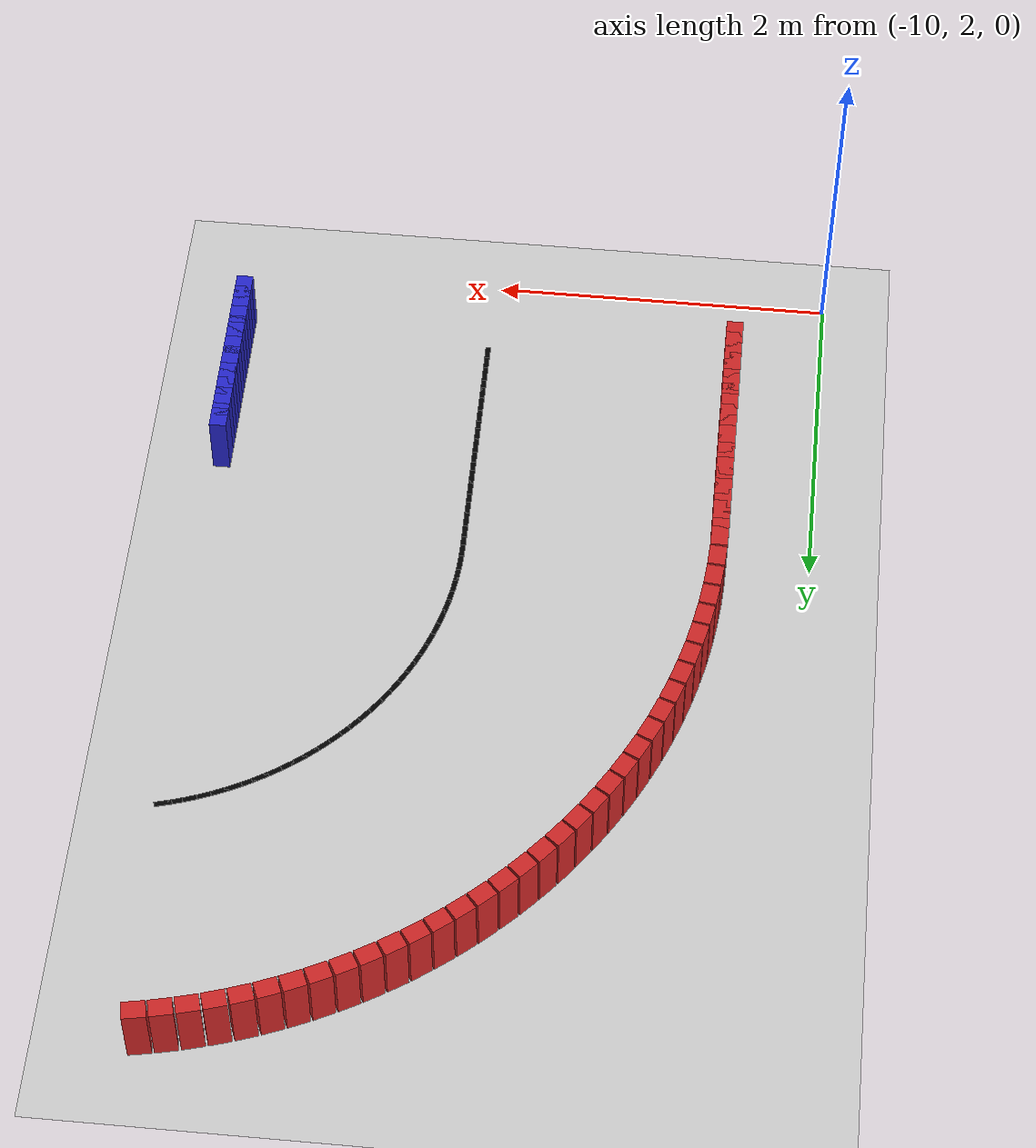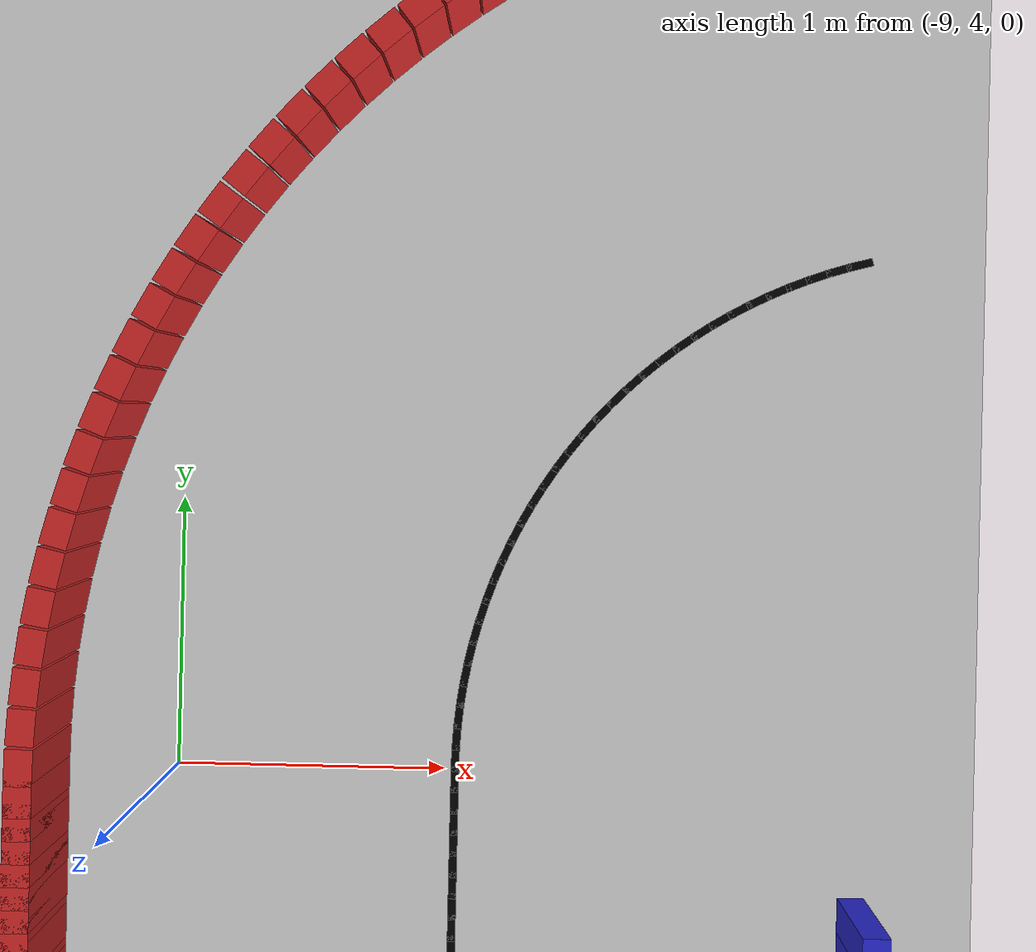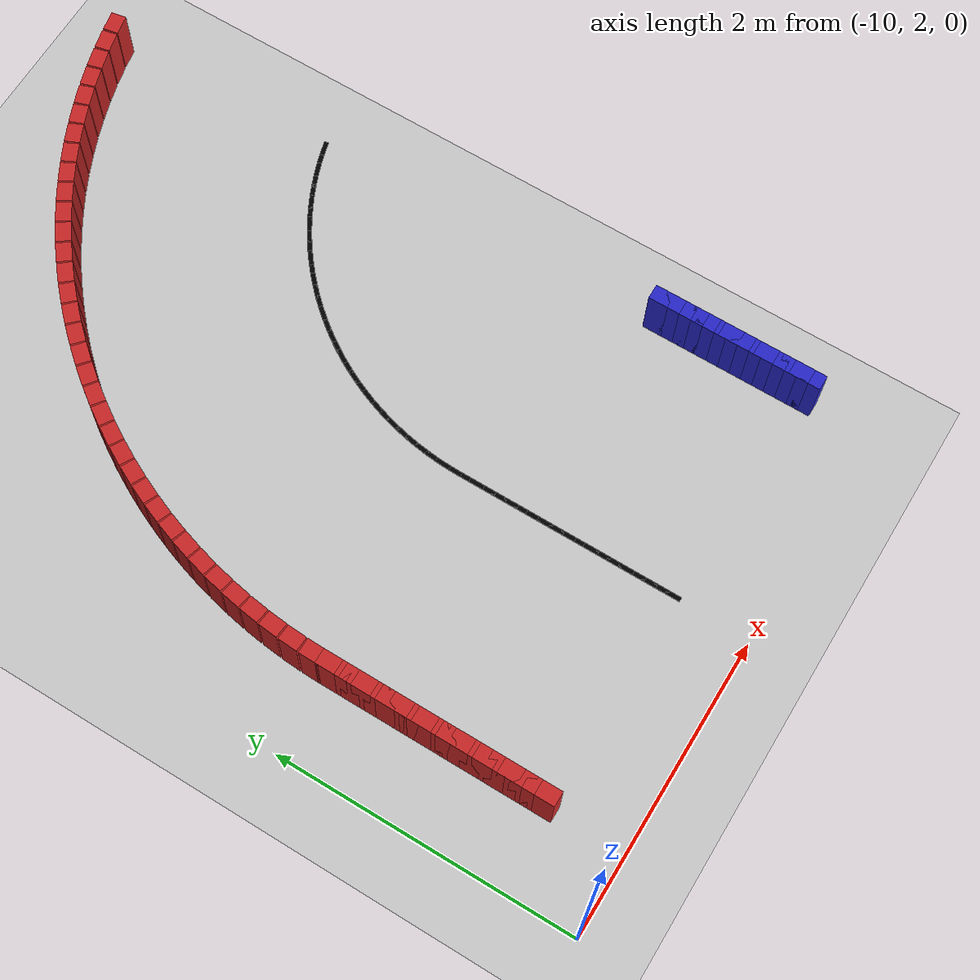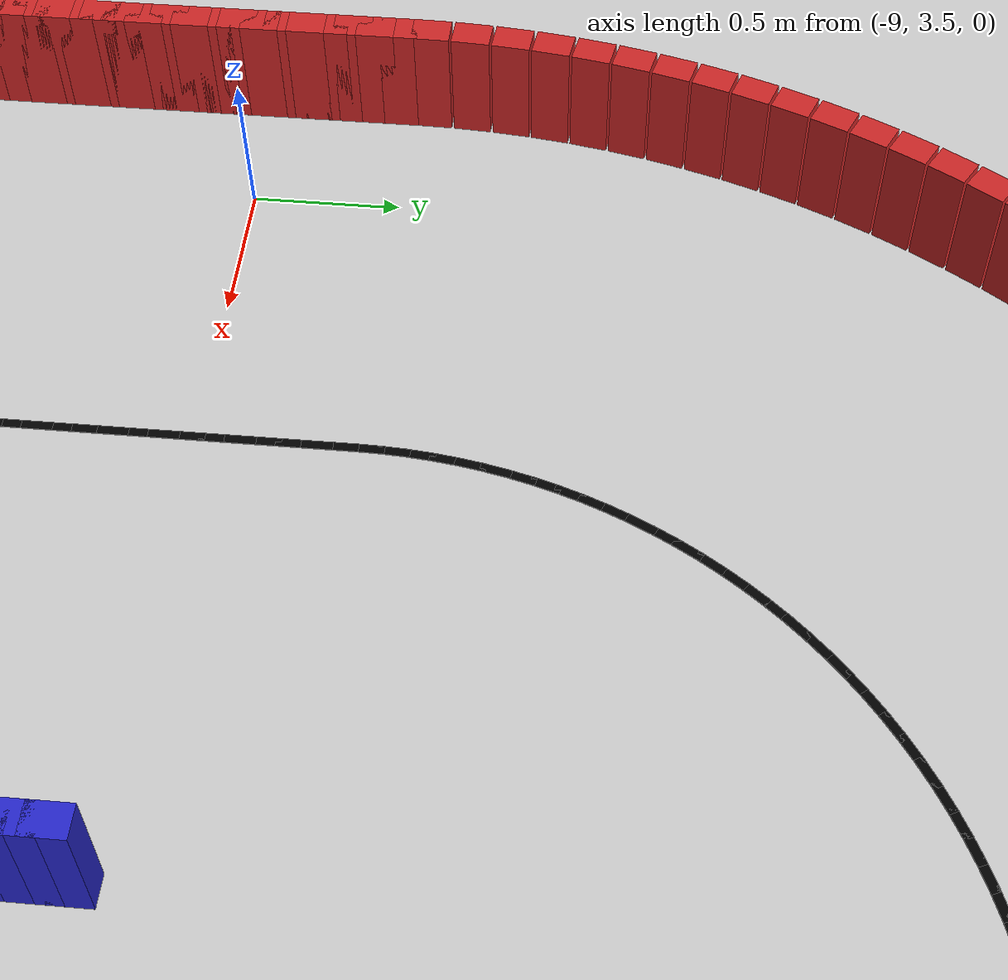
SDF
<sdf version="1.6">
 <world name="new_race_track">
  <include><uri>model://ground_plane</uri></include>
  <include><uri>model://sun</uri></include>
  <model name="iw_739">
   <static>true</static>
   <pose>-6.4621 3.4800 0.200 0 0 -1.5708</pose>
   <link name="l">
    <collision name="c"><geometry><box><size>0.1300 0.1 0.4</size></box></geometry></collision>
    <visual name="v">
     <geometry><box><size>0.1300 0.1 0.4</size></box></geometry>
     <material><ambient>0.15 0.15 0.8 1</ambient><diffuse>0.15 0.15 0.8 1</diffuse></material>
    </visual>
   </link>
  </model>
  <model name="iw_740">
   <static>true</static>
   <pose>-6.4621 3.4000 0.200 0 0 -1.5708</pose>
   <link name="l">
    <collision name="c"><geometry><box><size>0.1300 0.1 0.4</size></box></geometry></collision>
    <visual name="v">
     <geometry><box><size>0.1300 0.1 0.4</size></box></geometry>
     <material><ambient>0.15 0.15 0.8 1</ambient><diffuse>0.15 0.15 0.8 1</diffuse></material>
    </visual>
   </link>
  </model>
  <model name="iw_741">
   <static>true</static>
   <pose>-6.4621 3.3200 0.200 0 0 -1.5708</pose>
   <link name="l">
    <collision name="c"><geometry><box><size>0.1300 0.1 0.4</size></box></geometry></collision>
    <visual name="v">
     <geometry><box><size>0.1300 0.1 0.4</size></box></geometry>
     <material><ambient>0.15 0.15 0.8 1</ambient><diffuse>0.15 0.15 0.8 1</diffuse></material>
    </visual>
   </link>
  </model>
  <model name="iw_742">
   <static>true</static>
   <pose>-6.4621 3.2400 0.200 0 0 -1.5708</pose>
   <link name="l">
    <collision name="c"><geometry><box><size>0.1300 0.1 0.4</size></box></geometry></collision>
    <visual name="v">
     <geometry><box><size>0.1300 0.1 0.4</size></box></geometry>
     <material><ambient>0.15 0.15 0.8 1</ambient><diffuse>0.15 0.15 0.8 1</diffuse></material>
    </visual>
   </link>
  </model>
  <model name="iw_743">
   <static>true</static>
   <pose>-6.4621 3.1600 0.200 0 0 -1.5708</pose>
   <link name="l">
    <collision name="c"><geometry><box><size>0.1300 0.1 0.4</size></box></geometry></collision>
    <visual name="v">
     <geometry><box><size>0.1300 0.1 0.4</size></box></geometry>
     <material><ambient>0.15 0.15 0.8 1</ambient><diffuse>0.15 0.15 0.8 1</diffuse></material>
    </visual>
   </link>
  </model>
  <model name="iw_744">
   <static>true</static>
   <pose>-6.4621 3.0800 0.200 0 0 -1.5708</pose>
   <link name="l">
    <collision name="c"><geometry><box><size>0.1300 0.1 0.4</size></box></geometry></collision>
    <visual name="v">
     <geometry><box><size>0.1300 0.1 0.4</size></box></geometry>
     <material><ambient>0.15 0.15 0.8 1</ambient><diffuse>0.15 0.15 0.8 1</diffuse></material>
    </visual>
   </link>
  </model>
  <model name="iw_745">
   <static>true</static>
   <pose>-6.4621 3.0000 0.200 0 0 -1.5708</pose>
   <link name="l">
    <collision name="c"><geometry><box><size>0.1300 0.1 0.4</size></box></geometry></collision>
    <visual name="v">
     <geometry><box><size>0.1300 0.1 0.4</size></box></geometry>
     <material><ambient>0.15 0.15 0.8 1</ambient><diffuse>0.15 0.15 0.8 1</diffuse></material>
    </visual>
   </link>
  </model>
  <model name="iw_746">
   <static>true</static>
   <pose>-6.4621 2.9200 0.200 0 0 -1.5708</pose>
   <link name="l">
    <collision name="c"><geometry><box><size>0.1300 0.1 0.4</size></box></geometry></collision>
    <visual name="v">
     <geometry><box><size>0.1300 0.1 0.4</size></box></geometry>
     <material><ambient>0.15 0.15 0.8 1</ambient><diffuse>0.15 0.15 0.8 1</diffuse></material>
    </visual>
   </link>
  </model>
  <model name="iw_747">
   <static>true</static>
   <pose>-6.4621 2.8400 0.200 0 0 -1.5708</pose>
   <link name="l">
    <collision name="c"><geometry><box><size>0.1300 0.1 0.4</size></box></geometry></collision>
    <visual name="v">
     <geometry><box><size>0.1300 0.1 0.4</size></box></geometry>
     <material><ambient>0.15 0.15 0.8 1</ambient><diffuse>0.15 0.15 0.8 1</diffuse></material>
    </visual>
   </link>
  </model>
  <model name="iw_748">
   <static>true</static>
   <pose>-6.4621 2.7600 0.200 0 0 -1.5708</pose>
   <link name="l">
    <collision name="c"><geometry><box><size>0.1300 0.1 0.4</size></box></geometry></collision>
    <visual name="v">
     <geometry><box><size>0.1300 0.1 0.4</size></box></geometry>
     <material><ambient>0.15 0.15 0.8 1</ambient><diffuse>0.15 0.15 0.8 1</diffuse></material>
    </visual>
   </link>
  </model>
  <model name="iw_749">
   <static>true</static>
   <pose>-6.4621 2.6800 0.200 0 0 -1.5708</pose>
   <link name="l">
    <collision name="c"><geometry><box><size>0.1300 0.1 0.4</size></box></geometry></collision>
    <visual name="v">
     <geometry><box><size>0.1300 0.1 0.4</size></box></geometry>
     <material><ambient>0.15 0.15 0.8 1</ambient><diffuse>0.15 0.15 0.8 1</diffuse></material>
    </visual>
   </link>
  </model>
  <model name="iw_750">
   <static>true</static>
   <pose>-6.4621 2.6000 0.200 0 0 -1.5708</pose>
   <link name="l">
    <collision name="c"><geometry><box><size>0.1300 0.1 0.4</size></box></geometry></collision>
    <visual name="v">
     <geometry><box><size>0.1300 0.1 0.4</size></box></geometry>
     <material><ambient>0.15 0.15 0.8 1</ambient><diffuse>0.15 0.15 0.8 1</diffuse></material>
    </visual>
   </link>
  </model>
  <model name="iw_751">
   <static>true</static>
   <pose>-6.4621 2.5200 0.200 0 0 -1.5708</pose>
   <link name="l">
    <collision name="c"><geometry><box><size>0.1300 0.1 0.4</size></box></geometry></collision>
    <visual name="v">
     <geometry><box><size>0.1300 0.1 0.4</size></box></geometry>
     <material><ambient>0.15 0.15 0.8 1</ambient><diffuse>0.15 0.15 0.8 1</diffuse></material>
    </visual>
   </link>
  </model>
  <model name="iw_752">
   <static>true</static>
   <pose>-6.4621 2.4400 0.200 0 0 -1.5708</pose>
   <link name="l">
    <collision name="c"><geometry><box><size>0.1300 0.1 0.4</size></box></geometry></collision>
    <visual name="v">
     <geometry><box><size>0.1300 0.1 0.4</size></box></geometry>
     <material><ambient>0.15 0.15 0.8 1</ambient><diffuse>0.15 0.15 0.8 1</diffuse></material>
    </visual>
   </link>
  </model>
  <model name="ow_698">
   <static>true</static>
   <pose>-6.5929 7.4423 0.200 0 0 -2.9603</pose>
   <link name="l">
    <collision name="c"><geometry><box><size>0.1305 0.1 0.4</size></box></geometry></collision>
    <visual name="v">
     <geometry><box><size>0.1305 0.1 0.4</size></box></geometry>
     <material><ambient>0.8 0.15 0.15 1</ambient><diffuse>0.8 0.15 0.15 1</diffuse></material>
    </visual>
   </link>
  </model>
  <model name="ow_699">
   <static>true</static>
   <pose>-6.7310 7.4141 0.200 0 0 -2.9201</pose>
   <link name="l">
    <collision name="c"><geometry><box><size>0.1305 0.1 0.4</size></box></geometry></collision>
    <visual name="v">
     <geometry><box><size>0.1305 0.1 0.4</size></box></geometry>
     <material><ambient>0.8 0.15 0.15 1</ambient><diffuse>0.8 0.15 0.15 1</diffuse></material>
    </visual>
   </link>
  </model>
  <model name="ow_700">
   <static>true</static>
   <pose>-6.8678 7.3803 0.200 0 0 -2.8798</pose>
   <link name="l">
    <collision name="c"><geometry><box><size>0.1305 0.1 0.4</size></box></geometry></collision>
    <visual name="v">
     <geometry><box><size>0.1305 0.1 0.4</size></box></geometry>
     <material><ambient>0.8 0.15 0.15 1</ambient><diffuse>0.8 0.15 0.15 1</diffuse></material>
    </visual>
   </link>
  </model>
  <model name="ow_701">
   <static>true</static>
   <pose>-7.0032 7.3411 0.200 0 0 -2.8395</pose>
   <link name="l">
    <collision name="c"><geometry><box><size>0.1305 0.1 0.4</size></box></geometry></collision>
    <visual name="v">
     <geometry><box><size>0.1305 0.1 0.4</size></box></geometry>
     <material><ambient>0.8 0.15 0.15 1</ambient><diffuse>0.8 0.15 0.15 1</diffuse></material>
    </visual>
   </link>
  </model>
  <model name="ow_702">
   <static>true</static>
   <pose>-7.1369 7.2965 0.200 0 0 -2.7992</pose>
   <link name="l">
    <collision name="c"><geometry><box><size>0.1305 0.1 0.4</size></box></geometry></collision>
    <visual name="v">
     <geometry><box><size>0.1305 0.1 0.4</size></box></geometry>
     <material><ambient>0.8 0.15 0.15 1</ambient><diffuse>0.8 0.15 0.15 1</diffuse></material>
    </visual>
   </link>
  </model>
  <model name="ow_703">
   <static>true</static>
   <pose>-7.2687 7.2465 0.200 0 0 -2.7590</pose>
   <link name="l">
    <collision name="c"><geometry><box><size>0.1305 0.1 0.4</size></box></geometry></collision>
    <visual name="v">
     <geometry><box><size>0.1305 0.1 0.4</size></box></geometry>
     <material><ambient>0.8 0.15 0.15 1</ambient><diffuse>0.8 0.15 0.15 1</diffuse></material>
    </visual>
   </link>
  </model>
  <model name="ow_704">
   <static>true</static>
   <pose>-7.3984 7.1913 0.200 0 0 -2.7187</pose>
   <link name="l">
    <collision name="c"><geometry><box><size>0.1305 0.1 0.4</size></box></geometry></collision>
    <visual name="v">
     <geometry><box><size>0.1305 0.1 0.4</size></box></geometry>
     <material><ambient>0.8 0.15 0.15 1</ambient><diffuse>0.8 0.15 0.15 1</diffuse></material>
    </visual>
   </link>
  </model>
  <model name="ow_705">
   <static>true</static>
   <pose>-7.5257 7.1309 0.200 0 0 -2.6784</pose>
   <link name="l">
    <collision name="c"><geometry><box><size>0.1305 0.1 0.4</size></box></geometry></collision>
    <visual name="v">
     <geometry><box><size>0.1305 0.1 0.4</size></box></geometry>
     <material><ambient>0.8 0.15 0.15 1</ambient><diffuse>0.8 0.15 0.15 1</diffuse></material>
    </visual>
   </link>
  </model>
  <model name="ow_706">
   <static>true</static>
   <pose>-7.6505 7.0654 0.200 0 0 -2.6381</pose>
   <link name="l">
    <collision name="c"><geometry><box><size>0.1305 0.1 0.4</size></box></geometry></collision>
    <visual name="v">
     <geometry><box><size>0.1305 0.1 0.4</size></box></geometry>
     <material><ambient>0.8 0.15 0.15 1</ambient><diffuse>0.8 0.15 0.15 1</diffuse></material>
    </visual>
   </link>
  </model>
  <model name="ow_707">
   <static>true</static>
   <pose>-7.7725 6.9949 0.200 0 0 -2.5979</pose>
   <link name="l">
    <collision name="c"><geometry><box><size>0.1305 0.1 0.4</size></box></geometry></collision>
    <visual name="v">
     <geometry><box><size>0.1305 0.1 0.4</size></box></geometry>
     <material><ambient>0.8 0.15 0.15 1</ambient><diffuse>0.8 0.15 0.15 1</diffuse></material>
    </visual>
   </link>
  </model>
  <model name="ow_708">
   <static>true</static>
   <pose>-7.8917 6.9196 0.200 0 0 -2.5576</pose>
   <link name="l">
    <collision name="c"><geometry><box><size>0.1305 0.1 0.4</size></box></geometry></collision>
    <visual name="v">
     <geometry><box><size>0.1305 0.1 0.4</size></box></geometry>
     <material><ambient>0.8 0.15 0.15 1</ambient><diffuse>0.8 0.15 0.15 1</diffuse></material>
    </visual>
   </link>
  </model>
  <model name="ow_709">
   <static>true</static>
   <pose>-8.0077 6.8395 0.200 0 0 -2.5173</pose>
   <link name="l">
    <collision name="c"><geometry><box><size>0.1305 0.1 0.4</size></box></geometry></collision>
    <visual name="v">
     <geometry><box><size>0.1305 0.1 0.4</size></box></geometry>
     <material><ambient>0.8 0.15 0.15 1</ambient><diffuse>0.8 0.15 0.15 1</diffuse></material>
    </visual>
   </link>
  </model>
  <model name="ow_710">
   <static>true</static>
   <pose>-8.1203 6.7548 0.200 0 0 -2.4770</pose>
   <link name="l">
    <collision name="c"><geometry><box><size>0.1305 0.1 0.4</size></box></geometry></collision>
    <visual name="v">
     <geometry><box><size>0.1305 0.1 0.4</size></box></geometry>
     <material><ambient>0.8 0.15 0.15 1</ambient><diffuse>0.8 0.15 0.15 1</diffuse></material>
    </visual>
   </link>
  </model>
  <model name="ow_711">
   <static>true</static>
   <pose>-8.2295 6.6657 0.200 0 0 -2.4367</pose>
   <link name="l">
    <collision name="c"><geometry><box><size>0.1305 0.1 0.4</size></box></geometry></collision>
    <visual name="v">
     <geometry><box><size>0.1305 0.1 0.4</size></box></geometry>
     <material><ambient>0.8 0.15 0.15 1</ambient><diffuse>0.8 0.15 0.15 1</diffuse></material>
    </visual>
   </link>
  </model>
  <model name="ow_712">
   <static>true</static>
   <pose>-8.3350 6.5722 0.200 0 0 -2.3965</pose>
   <link name="l">
    <collision name="c"><geometry><box><size>0.1305 0.1 0.4</size></box></geometry></collision>
    <visual name="v">
     <geometry><box><size>0.1305 0.1 0.4</size></box></geometry>
     <material><ambient>0.8 0.15 0.15 1</ambient><diffuse>0.8 0.15 0.15 1</diffuse></material>
    </visual>
   </link>
  </model>
  <model name="ow_713">
   <static>true</static>
   <pose>-8.4367 6.4746 0.200 0 0 -2.3562</pose>
   <link name="l">
    <collision name="c"><geometry><box><size>0.1305 0.1 0.4</size></box></geometry></collision>
    <visual name="v">
     <geometry><box><size>0.1305 0.1 0.4</size></box></geometry>
     <material><ambient>0.8 0.15 0.15 1</ambient><diffuse>0.8 0.15 0.15 1</diffuse></material>
    </visual>
   </link>
  </model>
  <model name="ow_714">
   <static>true</static>
   <pose>-8.5343 6.3729 0.200 0 0 -2.3159</pose>
   <link name="l">
    <collision name="c"><geometry><box><size>0.1305 0.1 0.4</size></box></geometry></collision>
    <visual name="v">
     <geometry><box><size>0.1305 0.1 0.4</size></box></geometry>
     <material><ambient>0.8 0.15 0.15 1</ambient><diffuse>0.8 0.15 0.15 1</diffuse></material>
    </visual>
   </link>
  </model>
  <model name="ow_715">
   <static>true</static>
   <pose>-8.6278 6.2674 0.200 0 0 -2.2756</pose>
   <link name="l">
    <collision name="c"><geometry><box><size>0.1305 0.1 0.4</size></box></geometry></collision>
    <visual name="v">
     <geometry><box><size>0.1305 0.1 0.4</size></box></geometry>
     <material><ambient>0.8 0.15 0.15 1</ambient><diffuse>0.8 0.15 0.15 1</diffuse></material>
    </visual>
   </link>
  </model>
  <model name="ow_716">
   <static>true</static>
   <pose>-8.7169 6.1583 0.200 0 0 -2.2354</pose>
   <link name="l">
    <collision name="c"><geometry><box><size>0.1305 0.1 0.4</size></box></geometry></collision>
    <visual name="v">
     <geometry><box><size>0.1305 0.1 0.4</size></box></geometry>
     <material><ambient>0.8 0.15 0.15 1</ambient><diffuse>0.8 0.15 0.15 1</diffuse></material>
    </visual>
   </link>
  </model>
  <model name="ow_717">
   <static>true</static>
   <pose>-8.8016 6.0456 0.200 0 0 -2.1951</pose>
   <link name="l">
    <collision name="c"><geometry><box><size>0.1305 0.1 0.4</size></box></geometry></collision>
    <visual name="v">
     <geometry><box><size>0.1305 0.1 0.4</size></box></geometry>
     <material><ambient>0.8 0.15 0.15 1</ambient><diffuse>0.8 0.15 0.15 1</diffuse></material>
    </visual>
   </link>
  </model>
  <model name="ow_718">
   <static>true</static>
   <pose>-8.8816 5.9296 0.200 0 0 -2.1548</pose>
   <link name="l">
    <collision name="c"><geometry><box><size>0.1305 0.1 0.4</size></box></geometry></collision>
    <visual name="v">
     <geometry><box><size>0.1305 0.1 0.4</size></box></geometry>
     <material><ambient>0.8 0.15 0.15 1</ambient><diffuse>0.8 0.15 0.15 1</diffuse></material>
    </visual>
   </link>
  </model>
  <model name="ow_719">
   <static>true</static>
   <pose>-8.9570 5.8105 0.200 0 0 -2.1145</pose>
   <link name="l">
    <collision name="c"><geometry><box><size>0.1305 0.1 0.4</size></box></geometry></collision>
    <visual name="v">
     <geometry><box><size>0.1305 0.1 0.4</size></box></geometry>
     <material><ambient>0.8 0.15 0.15 1</ambient><diffuse>0.8 0.15 0.15 1</diffuse></material>
    </visual>
   </link>
  </model>
  <model name="ow_720">
   <static>true</static>
   <pose>-9.0274 5.6884 0.200 0 0 -2.0743</pose>
   <link name="l">
    <collision name="c"><geometry><box><size>0.1305 0.1 0.4</size></box></geometry></collision>
    <visual name="v">
     <geometry><box><size>0.1305 0.1 0.4</size></box></geometry>
     <material><ambient>0.8 0.15 0.15 1</ambient><diffuse>0.8 0.15 0.15 1</diffuse></material>
    </visual>
   </link>
  </model>
  <model name="ow_721">
   <static>true</static>
   <pose>-9.0929 5.5636 0.200 0 0 -2.0340</pose>
   <link name="l">
    <collision name="c"><geometry><box><size>0.1305 0.1 0.4</size></box></geometry></collision>
    <visual name="v">
     <geometry><box><size>0.1305 0.1 0.4</size></box></geometry>
     <material><ambient>0.8 0.15 0.15 1</ambient><diffuse>0.8 0.15 0.15 1</diffuse></material>
    </visual>
   </link>
  </model>
  <model name="ow_722">
   <static>true</static>
   <pose>-9.1534 5.4363 0.200 0 0 -1.9937</pose>
   <link name="l">
    <collision name="c"><geometry><box><size>0.1305 0.1 0.4</size></box></geometry></collision>
    <visual name="v">
     <geometry><box><size>0.1305 0.1 0.4</size></box></geometry>
     <material><ambient>0.8 0.15 0.15 1</ambient><diffuse>0.8 0.15 0.15 1</diffuse></material>
    </visual>
   </link>
  </model>
  <model name="ow_723">
   <static>true</static>
   <pose>-9.2086 5.3066 0.200 0 0 -1.9534</pose>
   <link name="l">
    <collision name="c"><geometry><box><size>0.1305 0.1 0.4</size></box></geometry></collision>
    <visual name="v">
     <geometry><box><size>0.1305 0.1 0.4</size></box></geometry>
     <material><ambient>0.8 0.15 0.15 1</ambient><diffuse>0.8 0.15 0.15 1</diffuse></material>
    </visual>
   </link>
  </model>
  <model name="ow_724">
   <static>true</static>
   <pose>-9.2586 5.1748 0.200 0 0 -1.9131</pose>
   <link name="l">
    <collision name="c"><geometry><box><size>0.1305 0.1 0.4</size></box></geometry></collision>
    <visual name="v">
     <geometry><box><size>0.1305 0.1 0.4</size></box></geometry>
     <material><ambient>0.8 0.15 0.15 1</ambient><diffuse>0.8 0.15 0.15 1</diffuse></material>
    </visual>
   </link>
  </model>
  <model name="ow_725">
   <static>true</static>
   <pose>-9.3032 5.0411 0.200 0 0 -1.8729</pose>
   <link name="l">
    <collision name="c"><geometry><box><size>0.1305 0.1 0.4</size></box></geometry></collision>
    <visual name="v">
     <geometry><box><size>0.1305 0.1 0.4</size></box></geometry>
     <material><ambient>0.8 0.15 0.15 1</ambient><diffuse>0.8 0.15 0.15 1</diffuse></material>
    </visual>
   </link>
  </model>
  <model name="ow_726">
   <static>true</static>
   <pose>-9.3424 4.9058 0.200 0 0 -1.8326</pose>
   <link name="l">
    <collision name="c"><geometry><box><size>0.1305 0.1 0.4</size></box></geometry></collision>
    <visual name="v">
     <geometry><box><size>0.1305 0.1 0.4</size></box></geometry>
     <material><ambient>0.8 0.15 0.15 1</ambient><diffuse>0.8 0.15 0.15 1</diffuse></material>
    </visual>
   </link>
  </model>
  <model name="ow_727">
   <static>true</static>
   <pose>-9.3762 4.7689 0.200 0 0 -1.7923</pose>
   <link name="l">
    <collision name="c"><geometry><box><size>0.1305 0.1 0.4</size></box></geometry></collision>
    <visual name="v">
     <geometry><box><size>0.1305 0.1 0.4</size></box></geometry>
     <material><ambient>0.8 0.15 0.15 1</ambient><diffuse>0.8 0.15 0.15 1</diffuse></material>
    </visual>
   </link>
  </model>
  <model name="ow_728">
   <static>true</static>
   <pose>-9.4043 4.6308 0.200 0 0 -1.7520</pose>
   <link name="l">
    <collision name="c"><geometry><box><size>0.1305 0.1 0.4</size></box></geometry></collision>
    <visual name="v">
     <geometry><box><size>0.1305 0.1 0.4</size></box></geometry>
     <material><ambient>0.8 0.15 0.15 1</ambient><diffuse>0.8 0.15 0.15 1</diffuse></material>
    </visual>
   </link>
  </model>
  <model name="ow_729">
   <static>true</static>
   <pose>-9.4270 4.4917 0.200 0 0 -1.7118</pose>
   <link name="l">
    <collision name="c"><geometry><box><size>0.1305 0.1 0.4</size></box></geometry></collision>
    <visual name="v">
     <geometry><box><size>0.1305 0.1 0.4</size></box></geometry>
     <material><ambient>0.8 0.15 0.15 1</ambient><diffuse>0.8 0.15 0.15 1</diffuse></material>
    </visual>
   </link>
  </model>
  <model name="ow_730">
   <static>true</static>
   <pose>-9.4439 4.3518 0.200 0 0 -1.6715</pose>
   <link name="l">
    <collision name="c"><geometry><box><size>0.1305 0.1 0.4</size></box></geometry></collision>
    <visual name="v">
     <geometry><box><size>0.1305 0.1 0.4</size></box></geometry>
     <material><ambient>0.8 0.15 0.15 1</ambient><diffuse>0.8 0.15 0.15 1</diffuse></material>
    </visual>
   </link>
  </model>
  <model name="ow_731">
   <static>true</static>
   <pose>-9.4553 4.2113 0.200 0 0 -1.6312</pose>
   <link name="l">
    <collision name="c"><geometry><box><size>0.1305 0.1 0.4</size></box></geometry></collision>
    <visual name="v">
     <geometry><box><size>0.1305 0.1 0.4</size></box></geometry>
     <material><ambient>0.8 0.15 0.15 1</ambient><diffuse>0.8 0.15 0.15 1</diffuse></material>
    </visual>
   </link>
  </model>
  <model name="ow_732">
   <static>true</static>
   <pose>-9.4610 4.0705 0.200 0 0 -1.5909</pose>
   <link name="l">
    <collision name="c"><geometry><box><size>0.1305 0.1 0.4</size></box></geometry></collision>
    <visual name="v">
     <geometry><box><size>0.1305 0.1 0.4</size></box></geometry>
     <material><ambient>0.8 0.15 0.15 1</ambient><diffuse>0.8 0.15 0.15 1</diffuse></material>
    </visual>
   </link>
  </model>
  <model name="ow_733">
   <static>true</static>
   <pose>-9.4621 3.9600 0.200 0 0 -1.5708</pose>
   <link name="l">
    <collision name="c"><geometry><box><size>0.1300 0.1 0.4</size></box></geometry></collision>
    <visual name="v">
     <geometry><box><size>0.1300 0.1 0.4</size></box></geometry>
     <material><ambient>0.8 0.15 0.15 1</ambient><diffuse>0.8 0.15 0.15 1</diffuse></material>
    </visual>
   </link>
  </model>
  <model name="ow_734">
   <static>true</static>
   <pose>-9.4621 3.8800 0.200 0 0 -1.5708</pose>
   <link name="l">
    <collision name="c"><geometry><box><size>0.1300 0.1 0.4</size></box></geometry></collision>
    <visual name="v">
     <geometry><box><size>0.1300 0.1 0.4</size></box></geometry>
     <material><ambient>0.8 0.15 0.15 1</ambient><diffuse>0.8 0.15 0.15 1</diffuse></material>
    </visual>
   </link>
  </model>
  <model name="ow_735">
   <static>true</static>
   <pose>-9.4621 3.8000 0.200 0 0 -1.5708</pose>
   <link name="l">
    <collision name="c"><geometry><box><size>0.1300 0.1 0.4</size></box></geometry></collision>
    <visual name="v">
     <geometry><box><size>0.1300 0.1 0.4</size></box></geometry>
     <material><ambient>0.8 0.15 0.15 1</ambient><diffuse>0.8 0.15 0.15 1</diffuse></material>
    </visual>
   </link>
  </model>
  <model name="ow_736">
   <static>true</static>
   <pose>-9.4621 3.7200 0.200 0 0 -1.5708</pose>
   <link name="l">
    <collision name="c"><geometry><box><size>0.1300 0.1 0.4</size></box></geometry></collision>
    <visual name="v">
     <geometry><box><size>0.1300 0.1 0.4</size></box></geometry>
     <material><ambient>0.8 0.15 0.15 1</ambient><diffuse>0.8 0.15 0.15 1</diffuse></material>
    </visual>
   </link>
  </model>
  <model name="ow_737">
   <static>true</static>
   <pose>-9.4621 3.6400 0.200 0 0 -1.5708</pose>
   <link name="l">
    <collision name="c"><geometry><box><size>0.1300 0.1 0.4</size></box></geometry></collision>
    <visual name="v">
     <geometry><box><size>0.1300 0.1 0.4</size></box></geometry>
     <material><ambient>0.8 0.15 0.15 1</ambient><diffuse>0.8 0.15 0.15 1</diffuse></material>
    </visual>
   </link>
  </model>
  <model name="ow_738">
   <static>true</static>
   <pose>-9.4621 3.5600 0.200 0 0 -1.5708</pose>
   <link name="l">
    <collision name="c"><geometry><box><size>0.1300 0.1 0.4</size></box></geometry></collision>
    <visual name="v">
     <geometry><box><size>0.1300 0.1 0.4</size></box></geometry>
     <material><ambient>0.8 0.15 0.15 1</ambient><diffuse>0.8 0.15 0.15 1</diffuse></material>
    </visual>
   </link>
  </model>
  <model name="ow_739">
   <static>true</static>
   <pose>-9.4621 3.4800 0.200 0 0 -1.5708</pose>
   <link name="l">
    <collision name="c"><geometry><box><size>0.1300 0.1 0.4</size></box></geometry></collision>
    <visual name="v">
     <geometry><box><size>0.1300 0.1 0.4</size></box></geometry>
     <material><ambient>0.8 0.15 0.15 1</ambient><diffuse>0.8 0.15 0.15 1</diffuse></material>
    </visual>
   </link>
  </model>
  <model name="ow_740">
   <static>true</static>
   <pose>-9.4621 3.4000 0.200 0 0 -1.5708</pose>
   <link name="l">
    <collision name="c"><geometry><box><size>0.1300 0.1 0.4</size></box></geometry></collision>
    <visual name="v">
     <geometry><box><size>0.1300 0.1 0.4</size></box></geometry>
     <material><ambient>0.8 0.15 0.15 1</ambient><diffuse>0.8 0.15 0.15 1</diffuse></material>
    </visual>
   </link>
  </model>
  <model name="ow_741">
   <static>true</static>
   <pose>-9.4621 3.3200 0.200 0 0 -1.5708</pose>
   <link name="l">
    <collision name="c"><geometry><box><size>0.1300 0.1 0.4</size></box></geometry></collision>
    <visual name="v">
     <geometry><box><size>0.1300 0.1 0.4</size></box></geometry>
     <material><ambient>0.8 0.15 0.15 1</ambient><diffuse>0.8 0.15 0.15 1</diffuse></material>
    </visual>
   </link>
  </model>
  <model name="ow_742">
   <static>true</static>
   <pose>-9.4621 3.2400 0.200 0 0 -1.5708</pose>
   <link name="l">
    <collision name="c"><geometry><box><size>0.1300 0.1 0.4</size></box></geometry></collision>
    <visual name="v">
     <geometry><box><size>0.1300 0.1 0.4</size></box></geometry>
     <material><ambient>0.8 0.15 0.15 1</ambient><diffuse>0.8 0.15 0.15 1</diffuse></material>
    </visual>
   </link>
  </model>
  <model name="ow_743">
   <static>true</static>
   <pose>-9.4621 3.1600 0.200 0 0 -1.5708</pose>
   <link name="l">
    <collision name="c"><geometry><box><size>0.1300 0.1 0.4</size></box></geometry></collision>
    <visual name="v">
     <geometry><box><size>0.1300 0.1 0.4</size></box></geometry>
     <material><ambient>0.8 0.15 0.15 1</ambient><diffuse>0.8 0.15 0.15 1</diffuse></material>
    </visual>
   </link>
  </model>
  <model name="ow_744">
   <static>true</static>
   <pose>-9.4621 3.0800 0.200 0 0 -1.5708</pose>
   <link name="l">
    <collision name="c"><geometry><box><size>0.1300 0.1 0.4</size></box></geometry></collision>
    <visual name="v">
     <geometry><box><size>0.1300 0.1 0.4</size></box></geometry>
     <material><ambient>0.8 0.15 0.15 1</ambient><diffuse>0.8 0.15 0.15 1</diffuse></material>
    </visual>
   </link>
  </model>
  <model name="ow_745">
   <static>true</static>
   <pose>-9.4621 3.0000 0.200 0 0 -1.5708</pose>
   <link name="l">
    <collision name="c"><geometry><box><size>0.1300 0.1 0.4</size></box></geometry></collision>
    <visual name="v">
     <geometry><box><size>0.1300 0.1 0.4</size></box></geometry>
     <material><ambient>0.8 0.15 0.15 1</ambient><diffuse>0.8 0.15 0.15 1</diffuse></material>
    </visual>
   </link>
  </model>
  <model name="ow_746">
   <static>true</static>
   <pose>-9.4621 2.9200 0.200 0 0 -1.5708</pose>
   <link name="l">
    <collision name="c"><geometry><box><size>0.1300 0.1 0.4</size></box></geometry></collision>
    <visual name="v">
     <geometry><box><size>0.1300 0.1 0.4</size></box></geometry>
     <material><ambient>0.8 0.15 0.15 1</ambient><diffuse>0.8 0.15 0.15 1</diffuse></material>
    </visual>
   </link>
  </model>
  <model name="ow_747">
   <static>true</static>
   <pose>-9.4621 2.8400 0.200 0 0 -1.5708</pose>
   <link name="l">
    <collision name="c"><geometry><box><size>0.1300 0.1 0.4</size></box></geometry></collision>
    <visual name="v">
     <geometry><box><size>0.1300 0.1 0.4</size></box></geometry>
     <material><ambient>0.8 0.15 0.15 1</ambient><diffuse>0.8 0.15 0.15 1</diffuse></material>
    </visual>
   </link>
  </model>
  <model name="ow_748">
   <static>true</static>
   <pose>-9.4621 2.7600 0.200 0 0 -1.5708</pose>
   <link name="l">
    <collision name="c"><geometry><box><size>0.1300 0.1 0.4</size></box></geometry></collision>
    <visual name="v">
     <geometry><box><size>0.1300 0.1 0.4</size></box></geometry>
     <material><ambient>0.8 0.15 0.15 1</ambient><diffuse>0.8 0.15 0.15 1</diffuse></material>
    </visual>
   </link>
  </model>
  <model name="ow_749">
   <static>true</static>
   <pose>-9.4621 2.6800 0.200 0 0 -1.5708</pose>
   <link name="l">
    <collision name="c"><geometry><box><size>0.1300 0.1 0.4</size></box></geometry></collision>
    <visual name="v">
     <geometry><box><size>0.1300 0.1 0.4</size></box></geometry>
     <material><ambient>0.8 0.15 0.15 1</ambient><diffuse>0.8 0.15 0.15 1</diffuse></material>
    </visual>
   </link>
  </model>
  <model name="ow_750">
   <static>true</static>
   <pose>-9.4621 2.6000 0.200 0 0 -1.5708</pose>
   <link name="l">
    <collision name="c"><geometry><box><size>0.1300 0.1 0.4</size></box></geometry></collision>
    <visual name="v">
     <geometry><box><size>0.1300 0.1 0.4</size></box></geometry>
     <material><ambient>0.8 0.15 0.15 1</ambient><diffuse>0.8 0.15 0.15 1</diffuse></material>
    </visual>
   </link>
  </model>
  <model name="ow_751">
   <static>true</static>
   <pose>-9.4621 2.5200 0.200 0 0 -1.5708</pose>
   <link name="l">
    <collision name="c"><geometry><box><size>0.1300 0.1 0.4</size></box></geometry></collision>
    <visual name="v">
     <geometry><box><size>0.1300 0.1 0.4</size></box></geometry>
     <material><ambient>0.8 0.15 0.15 1</ambient><diffuse>0.8 0.15 0.15 1</diffuse></material>
    </visual>
   </link>
  </model>
  <model name="line_700">
   <static>true</static>
   <pose>-6.4796 5.9315 0.002 0 0 -2.8798</pose>
   <link name="l">
    <visual name="v">
     <geometry><box><size>0.1005 0.03 0.002</size></box></geometry>
     <material><ambient>0 0 0 1</ambient><diffuse>0 0 0 1</diffuse></material>
    </visual>
   </link>
  </model>
  <model name="line_701">
   <static>true</static>
   <pose>-6.5570 5.9091 0.002 0 0 -2.8395</pose>
   <link name="l">
    <visual name="v">
     <geometry><box><size>0.1005 0.03 0.002</size></box></geometry>
     <material><ambient>0 0 0 1</ambient><diffuse>0 0 0 1</diffuse></material>
    </visual>
   </link>
  </model>
  <model name="line_702">
   <static>true</static>
   <pose>-6.6333 5.8836 0.002 0 0 -2.7992</pose>
   <link name="l">
    <visual name="v">
     <geometry><box><size>0.1005 0.03 0.002</size></box></geometry>
     <material><ambient>0 0 0 1</ambient><diffuse>0 0 0 1</diffuse></material>
    </visual>
   </link>
  </model>
  <model name="line_703">
   <static>true</static>
   <pose>-6.7086 5.8550 0.002 0 0 -2.7590</pose>
   <link name="l">
    <visual name="v">
     <geometry><box><size>0.1005 0.03 0.002</size></box></geometry>
     <material><ambient>0 0 0 1</ambient><diffuse>0 0 0 1</diffuse></material>
    </visual>
   </link>
  </model>
  <model name="line_704">
   <static>true</static>
   <pose>-6.7827 5.8234 0.002 0 0 -2.7187</pose>
   <link name="l">
    <visual name="v">
     <geometry><box><size>0.1005 0.03 0.002</size></box></geometry>
     <material><ambient>0 0 0 1</ambient><diffuse>0 0 0 1</diffuse></material>
    </visual>
   </link>
  </model>
  <model name="line_705">
   <static>true</static>
   <pose>-6.8555 5.7889 0.002 0 0 -2.6784</pose>
   <link name="l">
    <visual name="v">
     <geometry><box><size>0.1005 0.03 0.002</size></box></geometry>
     <material><ambient>0 0 0 1</ambient><diffuse>0 0 0 1</diffuse></material>
    </visual>
   </link>
  </model>
  <model name="line_706">
   <static>true</static>
   <pose>-6.9268 5.7515 0.002 0 0 -2.6381</pose>
   <link name="l">
    <visual name="v">
     <geometry><box><size>0.1005 0.03 0.002</size></box></geometry>
     <material><ambient>0 0 0 1</ambient><diffuse>0 0 0 1</diffuse></material>
    </visual>
   </link>
  </model>
  <model name="line_707">
   <static>true</static>
   <pose>-6.9965 5.7112 0.002 0 0 -2.5979</pose>
   <link name="l">
    <visual name="v">
     <geometry><box><size>0.1005 0.03 0.002</size></box></geometry>
     <material><ambient>0 0 0 1</ambient><diffuse>0 0 0 1</diffuse></material>
    </visual>
   </link>
  </model>
  <model name="line_708">
   <static>true</static>
   <pose>-7.0646 5.6682 0.002 0 0 -2.5576</pose>
   <link name="l">
    <visual name="v">
     <geometry><box><size>0.1005 0.03 0.002</size></box></geometry>
     <material><ambient>0 0 0 1</ambient><diffuse>0 0 0 1</diffuse></material>
    </visual>
   </link>
  </model>
  <model name="line_709">
   <static>true</static>
   <pose>-7.1309 5.6224 0.002 0 0 -2.5173</pose>
   <link name="l">
    <visual name="v">
     <geometry><box><size>0.1005 0.03 0.002</size></box></geometry>
     <material><ambient>0 0 0 1</ambient><diffuse>0 0 0 1</diffuse></material>
    </visual>
   </link>
  </model>
  <model name="line_710">
   <static>true</static>
   <pose>-7.1953 5.5740 0.002 0 0 -2.4770</pose>
   <link name="l">
    <visual name="v">
     <geometry><box><size>0.1005 0.03 0.002</size></box></geometry>
     <material><ambient>0 0 0 1</ambient><diffuse>0 0 0 1</diffuse></material>
    </visual>
   </link>
  </model>
  <model name="line_711">
   <static>true</static>
   <pose>-7.2576 5.5231 0.002 0 0 -2.4367</pose>
   <link name="l">
    <visual name="v">
     <geometry><box><size>0.1005 0.03 0.002</size></box></geometry>
     <material><ambient>0 0 0 1</ambient><diffuse>0 0 0 1</diffuse></material>
    </visual>
   </link>
  </model>
  <model name="line_712">
   <static>true</static>
   <pose>-7.3179 5.4697 0.002 0 0 -2.3965</pose>
   <link name="l">
    <visual name="v">
     <geometry><box><size>0.1005 0.03 0.002</size></box></geometry>
     <material><ambient>0 0 0 1</ambient><diffuse>0 0 0 1</diffuse></material>
    </visual>
   </link>
  </model>
  <model name="line_713">
   <static>true</static>
   <pose>-7.3760 5.4139 0.002 0 0 -2.3562</pose>
   <link name="l">
    <visual name="v">
     <geometry><box><size>0.1005 0.03 0.002</size></box></geometry>
     <material><ambient>0 0 0 1</ambient><diffuse>0 0 0 1</diffuse></material>
    </visual>
   </link>
  </model>
  <model name="line_714">
   <static>true</static>
   <pose>-7.4318 5.3558 0.002 0 0 -2.3159</pose>
   <link name="l">
    <visual name="v">
     <geometry><box><size>0.1005 0.03 0.002</size></box></geometry>
     <material><ambient>0 0 0 1</ambient><diffuse>0 0 0 1</diffuse></material>
    </visual>
   </link>
  </model>
  <model name="line_715">
   <static>true</static>
   <pose>-7.4852 5.2956 0.002 0 0 -2.2756</pose>
   <link name="l">
    <visual name="v">
     <geometry><box><size>0.1005 0.03 0.002</size></box></geometry>
     <material><ambient>0 0 0 1</ambient><diffuse>0 0 0 1</diffuse></material>
    </visual>
   </link>
  </model>
  <model name="line_716">
   <static>true</static>
   <pose>-7.5361 5.2332 0.002 0 0 -2.2354</pose>
   <link name="l">
    <visual name="v">
     <geometry><box><size>0.1005 0.03 0.002</size></box></geometry>
     <material><ambient>0 0 0 1</ambient><diffuse>0 0 0 1</diffuse></material>
    </visual>
   </link>
  </model>
  <model name="line_717">
   <static>true</static>
   <pose>-7.5845 5.1688 0.002 0 0 -2.1951</pose>
   <link name="l">
    <visual name="v">
     <geometry><box><size>0.1005 0.03 0.002</size></box></geometry>
     <material><ambient>0 0 0 1</ambient><diffuse>0 0 0 1</diffuse></material>
    </visual>
   </link>
  </model>
  <model name="line_718">
   <static>true</static>
   <pose>-7.6302 5.1025 0.002 0 0 -2.1548</pose>
   <link name="l">
    <visual name="v">
     <geometry><box><size>0.1005 0.03 0.002</size></box></geometry>
     <material><ambient>0 0 0 1</ambient><diffuse>0 0 0 1</diffuse></material>
    </visual>
   </link>
  </model>
  <model name="line_719">
   <static>true</static>
   <pose>-7.6733 5.0345 0.002 0 0 -2.1145</pose>
   <link name="l">
    <visual name="v">
     <geometry><box><size>0.1005 0.03 0.002</size></box></geometry>
     <material><ambient>0 0 0 1</ambient><diffuse>0 0 0 1</diffuse></material>
    </visual>
   </link>
  </model>
  <model name="line_720">
   <static>true</static>
   <pose>-7.7136 4.9647 0.002 0 0 -2.0743</pose>
   <link name="l">
    <visual name="v">
     <geometry><box><size>0.1005 0.03 0.002</size></box></geometry>
     <material><ambient>0 0 0 1</ambient><diffuse>0 0 0 1</diffuse></material>
    </visual>
   </link>
  </model>
  <model name="line_721">
   <static>true</static>
   <pose>-7.7510 4.8934 0.002 0 0 -2.0340</pose>
   <link name="l">
    <visual name="v">
     <geometry><box><size>0.1005 0.03 0.002</size></box></geometry>
     <material><ambient>0 0 0 1</ambient><diffuse>0 0 0 1</diffuse></material>
    </visual>
   </link>
  </model>
  <model name="line_722">
   <static>true</static>
   <pose>-7.7855 4.8207 0.002 0 0 -1.9937</pose>
   <link name="l">
    <visual name="v">
     <geometry><box><size>0.1005 0.03 0.002</size></box></geometry>
     <material><ambient>0 0 0 1</ambient><diffuse>0 0 0 1</diffuse></material>
    </visual>
   </link>
  </model>
  <model name="line_723">
   <static>true</static>
   <pose>-7.8171 4.7466 0.002 0 0 -1.9534</pose>
   <link name="l">
    <visual name="v">
     <geometry><box><size>0.1005 0.03 0.002</size></box></geometry>
     <material><ambient>0 0 0 1</ambient><diffuse>0 0 0 1</diffuse></material>
    </visual>
   </link>
  </model>
  <model name="line_724">
   <static>true</static>
   <pose>-7.8456 4.6713 0.002 0 0 -1.9131</pose>
   <link name="l">
    <visual name="v">
     <geometry><box><size>0.1005 0.03 0.002</size></box></geometry>
     <material><ambient>0 0 0 1</ambient><diffuse>0 0 0 1</diffuse></material>
    </visual>
   </link>
  </model>
  <model name="line_725">
   <static>true</static>
   <pose>-7.8711 4.5949 0.002 0 0 -1.8729</pose>
   <link name="l">
    <visual name="v">
     <geometry><box><size>0.1005 0.03 0.002</size></box></geometry>
     <material><ambient>0 0 0 1</ambient><diffuse>0 0 0 1</diffuse></material>
    </visual>
   </link>
  </model>
  <model name="line_726">
   <static>true</static>
   <pose>-7.8935 4.5175 0.002 0 0 -1.8326</pose>
   <link name="l">
    <visual name="v">
     <geometry><box><size>0.1005 0.03 0.002</size></box></geometry>
     <material><ambient>0 0 0 1</ambient><diffuse>0 0 0 1</diffuse></material>
    </visual>
   </link>
  </model>
  <model name="line_727">
   <static>true</static>
   <pose>-7.9128 4.4393 0.002 0 0 -1.7923</pose>
   <link name="l">
    <visual name="v">
     <geometry><box><size>0.1005 0.03 0.002</size></box></geometry>
     <material><ambient>0 0 0 1</ambient><diffuse>0 0 0 1</diffuse></material>
    </visual>
   </link>
  </model>
  <model name="line_728">
   <static>true</static>
   <pose>-7.9289 4.3604 0.002 0 0 -1.7520</pose>
   <link name="l">
    <visual name="v">
     <geometry><box><size>0.1005 0.03 0.002</size></box></geometry>
     <material><ambient>0 0 0 1</ambient><diffuse>0 0 0 1</diffuse></material>
    </visual>
   </link>
  </model>
  <model name="line_729">
   <static>true</static>
   <pose>-7.9418 4.2809 0.002 0 0 -1.7118</pose>
   <link name="l">
    <visual name="v">
     <geometry><box><size>0.1005 0.03 0.002</size></box></geometry>
     <material><ambient>0 0 0 1</ambient><diffuse>0 0 0 1</diffuse></material>
    </visual>
   </link>
  </model>
  <model name="line_730">
   <static>true</static>
   <pose>-7.9515 4.2010 0.002 0 0 -1.6715</pose>
   <link name="l">
    <visual name="v">
     <geometry><box><size>0.1005 0.03 0.002</size></box></geometry>
     <material><ambient>0 0 0 1</ambient><diffuse>0 0 0 1</diffuse></material>
    </visual>
   </link>
  </model>
  <model name="line_731">
   <static>true</static>
   <pose>-7.9580 4.1207 0.002 0 0 -1.6312</pose>
   <link name="l">
    <visual name="v">
     <geometry><box><size>0.1005 0.03 0.002</size></box></geometry>
     <material><ambient>0 0 0 1</ambient><diffuse>0 0 0 1</diffuse></material>
    </visual>
   </link>
  </model>
  <model name="line_732">
   <static>true</static>
   <pose>-7.9613 4.0403 0.002 0 0 -1.5909</pose>
   <link name="l">
    <visual name="v">
     <geometry><box><size>0.1005 0.03 0.002</size></box></geometry>
     <material><ambient>0 0 0 1</ambient><diffuse>0 0 0 1</diffuse></material>
    </visual>
   </link>
  </model>
  <model name="line_733">
   <static>true</static>
   <pose>-7.9621 3.9600 0.002 0 0 -1.5708</pose>
   <link name="l">
    <visual name="v">
     <geometry><box><size>0.1000 0.03 0.002</size></box></geometry>
     <material><ambient>0 0 0 1</ambient><diffuse>0 0 0 1</diffuse></material>
    </visual>
   </link>
  </model>
  <model name="line_734">
   <static>true</static>
   <pose>-7.9621 3.8800 0.002 0 0 -1.5708</pose>
   <link name="l">
    <visual name="v">
     <geometry><box><size>0.1000 0.03 0.002</size></box></geometry>
     <material><ambient>0 0 0 1</ambient><diffuse>0 0 0 1</diffuse></material>
    </visual>
   </link>
  </model>
  <model name="line_735">
   <static>true</static>
   <pose>-7.9621 3.8000 0.002 0 0 -1.5708</pose>
   <link name="l">
    <visual name="v">
     <geometry><box><size>0.1000 0.03 0.002</size></box></geometry>
     <material><ambient>0 0 0 1</ambient><diffuse>0 0 0 1</diffuse></material>
    </visual>
   </link>
  </model>
  <model name="line_736">
   <static>true</static>
   <pose>-7.9621 3.7200 0.002 0 0 -1.5708</pose>
   <link name="l">
    <visual name="v">
     <geometry><box><size>0.1000 0.03 0.002</size></box></geometry>
     <material><ambient>0 0 0 1</ambient><diffuse>0 0 0 1</diffuse></material>
    </visual>
   </link>
  </model>
  <model name="line_737">
   <static>true</static>
   <pose>-7.9621 3.6400 0.002 0 0 -1.5708</pose>
   <link name="l">
    <visual name="v">
     <geometry><box><size>0.1000 0.03 0.002</size></box></geometry>
     <material><ambient>0 0 0 1</ambient><diffuse>0 0 0 1</diffuse></material>
    </visual>
   </link>
  </model>
  <model name="line_738">
   <static>true</static>
   <pose>-7.9621 3.5600 0.002 0 0 -1.5708</pose>
   <link name="l">
    <visual name="v">
     <geometry><box><size>0.1000 0.03 0.002</size></box></geometry>
     <material><ambient>0 0 0 1</ambient><diffuse>0 0 0 1</diffuse></material>
    </visual>
   </link>
  </model>
  <model name="line_739">
   <static>true</static>
   <pose>-7.9621 3.4800 0.002 0 0 -1.5708</pose>
   <link name="l">
    <visual name="v">
     <geometry><box><size>0.1000 0.03 0.002</size></box></geometry>
     <material><ambient>0 0 0 1</ambient><diffuse>0 0 0 1</diffuse></material>
    </visual>
   </link>
  </model>
  <model name="line_740">
   <static>true</static>
   <pose>-7.9621 3.4000 0.002 0 0 -1.5708</pose>
   <link name="l">
    <visual name="v">
     <geometry><box><size>0.1000 0.03 0.002</size></box></geometry>
     <material><ambient>0 0 0 1</ambient><diffuse>0 0 0 1</diffuse></material>
    </visual>
   </link>
  </model>
  <model name="line_741">
   <static>true</static>
   <pose>-7.9621 3.3200 0.002 0 0 -1.5708</pose>
   <link name="l">
    <visual name="v">
     <geometry><box><size>0.1000 0.03 0.002</size></box></geometry>
     <material><ambient>0 0 0 1</ambient><diffuse>0 0 0 1</diffuse></material>
    </visual>
   </link>
  </model>
  <model name="line_742">
   <static>true</static>
   <pose>-7.9621 3.2400 0.002 0 0 -1.5708</pose>
   <link name="l">
    <visual name="v">
     <geometry><box><size>0.1000 0.03 0.002</size></box></geometry>
     <material><ambient>0 0 0 1</ambient><diffuse>0 0 0 1</diffuse></material>
    </visual>
   </link>
  </model>
  <model name="line_743">
   <static>true</static>
   <pose>-7.9621 3.1600 0.002 0 0 -1.5708</pose>
   <link name="l">
    <visual name="v">
     <geometry><box><size>0.1000 0.03 0.002</size></box></geometry>
     <material><ambient>0 0 0 1</ambient><diffuse>0 0 0 1</diffuse></material>
    </visual>
   </link>
  </model>
  <model name="line_744">
   <static>true</static>
   <pose>-7.9621 3.0800 0.002 0 0 -1.5708</pose>
   <link name="l">
    <visual name="v">
     <geometry><box><size>0.1000 0.03 0.002</size></box></geometry>
     <material><ambient>0 0 0 1</ambient><diffuse>0 0 0 1</diffuse></material>
    </visual>
   </link>
  </model>
  <model name="line_745">
   <static>true</static>
   <pose>-7.9621 3.0000 0.002 0 0 -1.5708</pose>
   <link name="l">
    <visual name="v">
     <geometry><box><size>0.1000 0.03 0.002</size></box></geometry>
     <material><ambient>0 0 0 1</ambient><diffuse>0 0 0 1</diffuse></material>
    </visual>
   </link>
  </model>
  <model name="line_746">
   <static>true</static>
   <pose>-7.9621 2.9200 0.002 0 0 -1.5708</pose>
   <link name="l">
    <visual name="v">
     <geometry><box><size>0.1000 0.03 0.002</size></box></geometry>
     <material><ambient>0 0 0 1</ambient><diffuse>0 0 0 1</diffuse></material>
    </visual>
   </link>
  </model>
  <model name="line_747">
   <static>true</static>
   <pose>-7.9621 2.8400 0.002 0 0 -1.5708</pose>
   <link name="l">
    <visual name="v">
     <geometry><box><size>0.1000 0.03 0.002</size></box></geometry>
     <material><ambient>0 0 0 1</ambient><diffuse>0 0 0 1</diffuse></material>
    </visual>
   </link>
  </model>
  <model name="line_748">
   <static>true</static>
   <pose>-7.9621 2.7600 0.002 0 0 -1.5708</pose>
   <link name="l">
    <visual name="v">
     <geometry><box><size>0.1000 0.03 0.002</size></box></geometry>
     <material><ambient>0 0 0 1</ambient><diffuse>0 0 0 1</diffuse></material>
    </visual>
   </link>
  </model>
  <model name="line_749">
   <static>true</static>
   <pose>-7.9621 2.6800 0.002 0 0 -1.5708</pose>
   <link name="l">
    <visual name="v">
     <geometry><box><size>0.1000 0.03 0.002</size></box></geometry>
     <material><ambient>0 0 0 1</ambient><diffuse>0 0 0 1</diffuse></material>
    </visual>
   </link>
  </model>
  <model name="line_750">
   <static>true</static>
   <pose>-7.9621 2.6000 0.002 0 0 -1.5708</pose>
   <link name="l">
    <visual name="v">
     <geometry><box><size>0.1000 0.03 0.002</size></box></geometry>
     <material><ambient>0 0 0 1</ambient><diffuse>0 0 0 1</diffuse></material>
    </visual>
   </link>
  </model>
  <model name="line_751">
   <static>true</static>
   <pose>-7.9621 2.5200 0.002 0 0 -1.5708</pose>
   <link name="l">
    <visual name="v">
     <geometry><box><size>0.1000 0.03 0.002</size></box></geometry>
     <material><ambient>0 0 0 1</ambient><diffuse>0 0 0 1</diffuse></material>
    </visual>
   </link>
  </model>
 </world>
</sdf>
